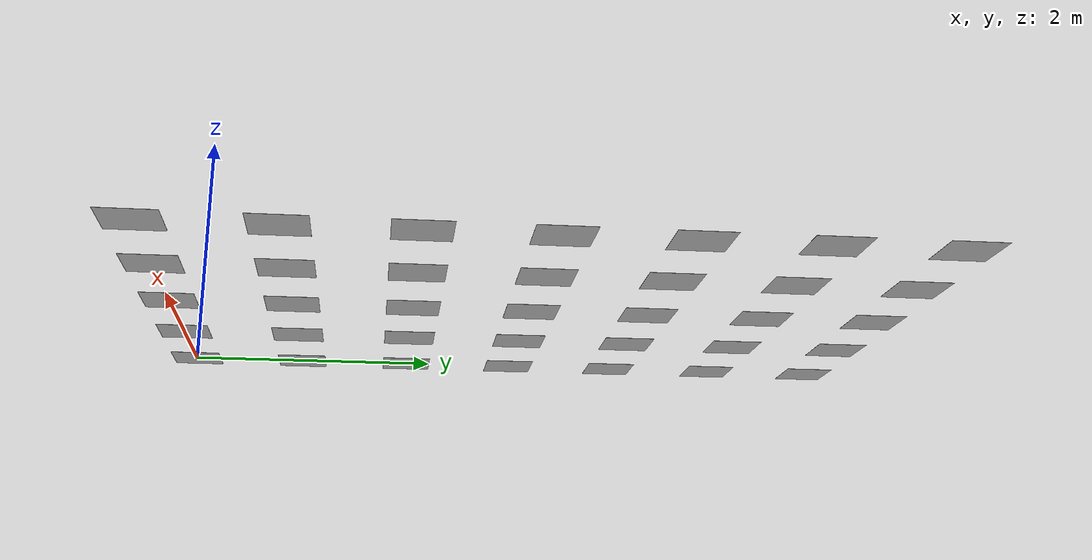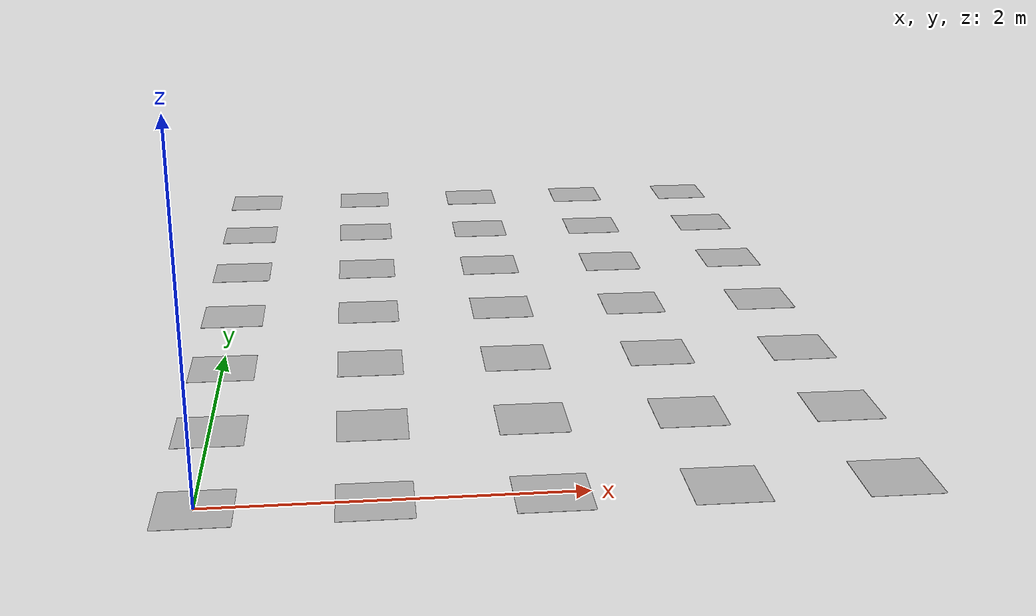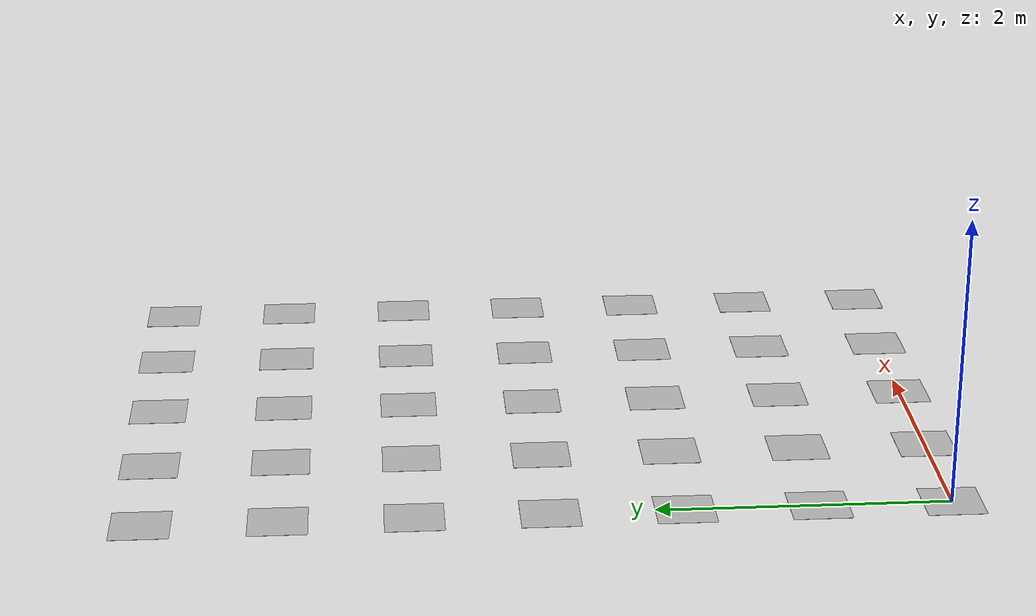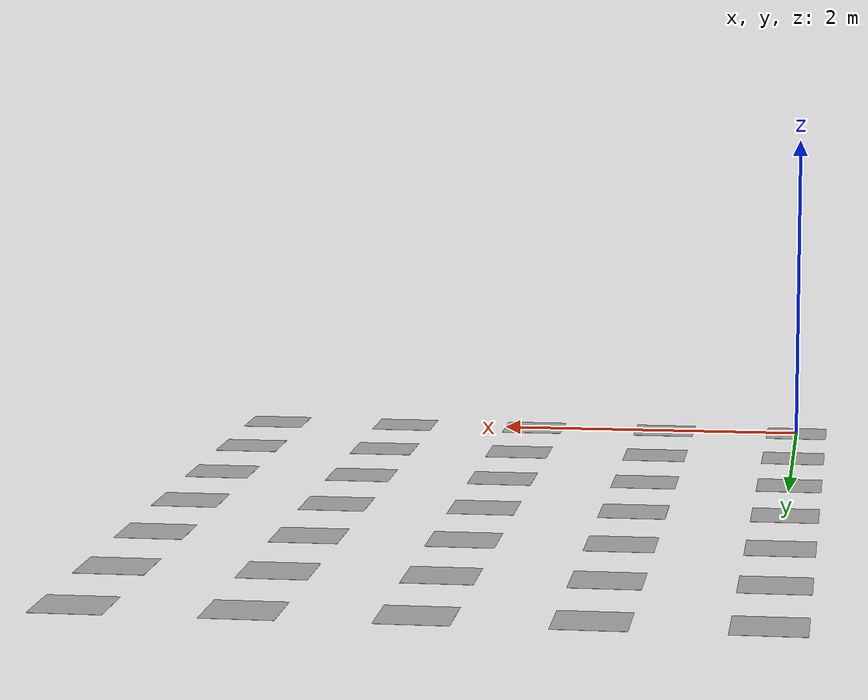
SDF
<?xml version="1.0"?>
<sdf version="1.5">
    <model name="aruco_3_35">
        <static>true</static>
        <link name="aruco_3_35_link">

<visual name="visual_marker_3_0">
    <pose>0.0 0.0 0.0 0 0 1.5707963267948966</pose>
    <cast_shadows>false</cast_shadows>
    <geometry>
        <box>
            <size>0.39999999999999997 0.39999999999999997 1e-3</size>
        </box>
    </geometry>
    <material>
        <script>
            <uri>model://aruco_model_config/materials/scripts</uri>
            <uri>model://aruco_model_config/materials/textures</uri>
            <name>aruco/marker_3_0</name>
        </script>
    </material>
</visual>

<visual name="visual_marker_3_1">
    <pose>0.0 0.9 0.0 0 0 1.5707963267948966</pose>
    <cast_shadows>false</cast_shadows>
    <geometry>
        <box>
            <size>0.39999999999999997 0.39999999999999997 1e-3</size>
        </box>
    </geometry>
    <material>
        <script>
            <uri>model://aruco_model_config/materials/scripts</uri>
            <uri>model://aruco_model_config/materials/textures</uri>
            <name>aruco/marker_3_1</name>
        </script>
    </material>
</visual>

<visual name="visual_marker_3_2">
    <pose>0.0 1.8 0.0 0 0 1.5707963267948966</pose>
    <cast_shadows>false</cast_shadows>
    <geometry>
        <box>
            <size>0.39999999999999997 0.39999999999999997 1e-3</size>
        </box>
    </geometry>
    <material>
        <script>
            <uri>model://aruco_model_config/materials/scripts</uri>
            <uri>model://aruco_model_config/materials/textures</uri>
            <name>aruco/marker_3_2</name>
        </script>
    </material>
</visual>

<visual name="visual_marker_3_3">
    <pose>0.0 2.7 0.0 0 0 1.5707963267948966</pose>
    <cast_shadows>false</cast_shadows>
    <geometry>
        <box>
            <size>0.39999999999999997 0.39999999999999997 1e-3</size>
        </box>
    </geometry>
    <material>
        <script>
            <uri>model://aruco_model_config/materials/scripts</uri>
            <uri>model://aruco_model_config/materials/textures</uri>
            <name>aruco/marker_3_3</name>
        </script>
    </material>
</visual>

<visual name="visual_marker_3_4">
    <pose>0.0 3.6 0.0 0 0 1.5707963267948966</pose>
    <cast_shadows>false</cast_shadows>
    <geometry>
        <box>
            <size>0.39999999999999997 0.39999999999999997 1e-3</size>
        </box>
    </geometry>
    <material>
        <script>
            <uri>model://aruco_model_config/materials/scripts</uri>
            <uri>model://aruco_model_config/materials/textures</uri>
            <name>aruco/marker_3_4</name>
        </script>
    </material>
</visual>

<visual name="visual_marker_3_5">
    <pose>0.0 4.5 0.0 0 0 1.5707963267948966</pose>
    <cast_shadows>false</cast_shadows>
    <geometry>
        <box>
            <size>0.39999999999999997 0.39999999999999997 1e-3</size>
        </box>
    </geometry>
    <material>
        <script>
            <uri>model://aruco_model_config/materials/scripts</uri>
            <uri>model://aruco_model_config/materials/textures</uri>
            <name>aruco/marker_3_5</name>
        </script>
    </material>
</visual>

<visual name="visual_marker_3_6">
    <pose>0.0 5.4 0.0 0 0 1.5707963267948966</pose>
    <cast_shadows>false</cast_shadows>
    <geometry>
        <box>
            <size>0.39999999999999997 0.39999999999999997 1e-3</size>
        </box>
    </geometry>
    <material>
        <script>
            <uri>model://aruco_model_config/materials/scripts</uri>
            <uri>model://aruco_model_config/materials/textures</uri>
            <name>aruco/marker_3_6</name>
        </script>
    </material>
</visual>

<visual name="visual_marker_3_7">
    <pose>0.9 0.0 0.0 0 0 1.5707963267948966</pose>
    <cast_shadows>false</cast_shadows>
    <geometry>
        <box>
            <size>0.39999999999999997 0.39999999999999997 1e-3</size>
        </box>
    </geometry>
    <material>
        <script>
            <uri>model://aruco_model_config/materials/scripts</uri>
            <uri>model://aruco_model_config/materials/textures</uri>
            <name>aruco/marker_3_7</name>
        </script>
    </material>
</visual>

<visual name="visual_marker_3_8">
    <pose>0.9 0.9 0.0 0 0 1.5707963267948966</pose>
    <cast_shadows>false</cast_shadows>
    <geometry>
        <box>
            <size>0.39999999999999997 0.39999999999999997 1e-3</size>
        </box>
    </geometry>
    <material>
        <script>
            <uri>model://aruco_model_config/materials/scripts</uri>
            <uri>model://aruco_model_config/materials/textures</uri>
            <name>aruco/marker_3_8</name>
        </script>
    </material>
</visual>

<visual name="visual_marker_3_9">
    <pose>0.9 1.8 0.0 0 0 1.5707963267948966</pose>
    <cast_shadows>false</cast_shadows>
    <geometry>
        <box>
            <size>0.39999999999999997 0.39999999999999997 1e-3</size>
        </box>
    </geometry>
    <material>
        <script>
            <uri>model://aruco_model_config/materials/scripts</uri>
            <uri>model://aruco_model_config/materials/textures</uri>
            <name>aruco/marker_3_9</name>
        </script>
    </material>
</visual>

<visual name="visual_marker_3_10">
    <pose>0.9 2.7 0.0 0 0 1.5707963267948966</pose>
    <cast_shadows>false</cast_shadows>
    <geometry>
        <box>
            <size>0.39999999999999997 0.39999999999999997 1e-3</size>
        </box>
    </geometry>
    <material>
        <script>
            <uri>model://aruco_model_config/materials/scripts</uri>
            <uri>model://aruco_model_config/materials/textures</uri>
            <name>aruco/marker_3_10</name>
        </script>
    </material>
</visual>

<visual name="visual_marker_3_11">
    <pose>0.9 3.6 0.0 0 0 1.5707963267948966</pose>
    <cast_shadows>false</cast_shadows>
    <geometry>
        <box>
            <size>0.39999999999999997 0.39999999999999997 1e-3</size>
        </box>
    </geometry>
    <material>
        <script>
            <uri>model://aruco_model_config/materials/scripts</uri>
            <uri>model://aruco_model_config/materials/textures</uri>
            <name>aruco/marker_3_11</name>
        </script>
    </material>
</visual>

<visual name="visual_marker_3_12">
    <pose>0.9 4.5 0.0 0 0 1.5707963267948966</pose>
    <cast_shadows>false</cast_shadows>
    <geometry>
        <box>
            <size>0.39999999999999997 0.39999999999999997 1e-3</size>
        </box>
    </geometry>
    <material>
        <script>
            <uri>model://aruco_model_config/materials/scripts</uri>
            <uri>model://aruco_model_config/materials/textures</uri>
            <name>aruco/marker_3_12</name>
        </script>
    </material>
</visual>

<visual name="visual_marker_3_13">
    <pose>0.9 5.4 0.0 0 0 1.5707963267948966</pose>
    <cast_shadows>false</cast_shadows>
    <geometry>
        <box>
            <size>0.39999999999999997 0.39999999999999997 1e-3</size>
        </box>
    </geometry>
    <material>
        <script>
            <uri>model://aruco_model_config/materials/scripts</uri>
            <uri>model://aruco_model_config/materials/textures</uri>
            <name>aruco/marker_3_13</name>
        </script>
    </material>
</visual>

<visual name="visual_marker_3_14">
    <pose>1.8 0.0 0.0 0 0 1.5707963267948966</pose>
    <cast_shadows>false</cast_shadows>
    <geometry>
        <box>
            <size>0.39999999999999997 0.39999999999999997 1e-3</size>
        </box>
    </geometry>
    <material>
        <script>
            <uri>model://aruco_model_config/materials/scripts</uri>
            <uri>model://aruco_model_config/materials/textures</uri>
            <name>aruco/marker_3_14</name>
        </script>
    </material>
</visual>

<visual name="visual_marker_3_15">
    <pose>1.8 0.9 0.0 0 0 1.5707963267948966</pose>
    <cast_shadows>false</cast_shadows>
    <geometry>
        <box>
            <size>0.39999999999999997 0.39999999999999997 1e-3</size>
        </box>
    </geometry>
    <material>
        <script>
            <uri>model://aruco_model_config/materials/scripts</uri>
            <uri>model://aruco_model_config/materials/textures</uri>
            <name>aruco/marker_3_15</name>
        </script>
    </material>
</visual>

<visual name="visual_marker_3_16">
    <pose>1.8 1.8 0.0 0 0 1.5707963267948966</pose>
    <cast_shadows>false</cast_shadows>
    <geometry>
        <box>
            <size>0.39999999999999997 0.39999999999999997 1e-3</size>
        </box>
    </geometry>
    <material>
        <script>
            <uri>model://aruco_model_config/materials/scripts</uri>
            <uri>model://aruco_model_config/materials/textures</uri>
            <name>aruco/marker_3_16</name>
        </script>
    </material>
</visual>

<visual name="visual_marker_3_17">
    <pose>1.8 2.7 0.0 0 0 1.5707963267948966</pose>
    <cast_shadows>false</cast_shadows>
    <geometry>
        <box>
            <size>0.39999999999999997 0.39999999999999997 1e-3</size>
        </box>
    </geometry>
    <material>
        <script>
            <uri>model://aruco_model_config/materials/scripts</uri>
            <uri>model://aruco_model_config/materials/textures</uri>
            <name>aruco/marker_3_17</name>
        </script>
    </material>
</visual>

<visual name="visual_marker_3_18">
    <pose>1.8 3.6 0.0 0 0 1.5707963267948966</pose>
    <cast_shadows>false</cast_shadows>
    <geometry>
        <box>
            <size>0.39999999999999997 0.39999999999999997 1e-3</size>
        </box>
    </geometry>
    <material>
        <script>
            <uri>model://aruco_model_config/materials/scripts</uri>
            <uri>model://aruco_model_config/materials/textures</uri>
            <name>aruco/marker_3_18</name>
        </script>
    </material>
</visual>

<visual name="visual_marker_3_19">
    <pose>1.8 4.5 0.0 0 0 1.5707963267948966</pose>
    <cast_shadows>false</cast_shadows>
    <geometry>
        <box>
            <size>0.39999999999999997 0.39999999999999997 1e-3</size>
        </box>
    </geometry>
    <material>
        <script>
            <uri>model://aruco_model_config/materials/scripts</uri>
            <uri>model://aruco_model_config/materials/textures</uri>
            <name>aruco/marker_3_19</name>
        </script>
    </material>
</visual>

<visual name="visual_marker_3_20">
    <pose>1.8 5.4 0.0 0 0 1.5707963267948966</pose>
    <cast_shadows>false</cast_shadows>
    <geometry>
        <box>
            <size>0.39999999999999997 0.39999999999999997 1e-3</size>
        </box>
    </geometry>
    <material>
        <script>
            <uri>model://aruco_model_config/materials/scripts</uri>
            <uri>model://aruco_model_config/materials/textures</uri>
            <name>aruco/marker_3_20</name>
        </script>
    </material>
</visual>

<visual name="visual_marker_3_21">
    <pose>2.7 0.0 0.0 0 0 1.5707963267948966</pose>
    <cast_shadows>false</cast_shadows>
    <geometry>
        <box>
            <size>0.39999999999999997 0.39999999999999997 1e-3</size>
        </box>
    </geometry>
    <material>
        <script>
            <uri>model://aruco_model_config/materials/scripts</uri>
            <uri>model://aruco_model_config/materials/textures</uri>
            <name>aruco/marker_3_21</name>
        </script>
    </material>
</visual>

<visual name="visual_marker_3_22">
    <pose>2.7 0.9 0.0 0 0 1.5707963267948966</pose>
    <cast_shadows>false</cast_shadows>
    <geometry>
        <box>
            <size>0.39999999999999997 0.39999999999999997 1e-3</size>
        </box>
    </geometry>
    <material>
        <script>
            <uri>model://aruco_model_config/materials/scripts</uri>
            <uri>model://aruco_model_config/materials/textures</uri>
            <name>aruco/marker_3_22</name>
        </script>
    </material>
</visual>

<visual name="visual_marker_3_23">
    <pose>2.7 1.8 0.0 0 0 1.5707963267948966</pose>
    <cast_shadows>false</cast_shadows>
    <geometry>
        <box>
            <size>0.39999999999999997 0.39999999999999997 1e-3</size>
        </box>
    </geometry>
    <material>
        <script>
            <uri>model://aruco_model_config/materials/scripts</uri>
            <uri>model://aruco_model_config/materials/textures</uri>
            <name>aruco/marker_3_23</name>
        </script>
    </material>
</visual>

<visual name="visual_marker_3_24">
    <pose>2.7 2.7 0.0 0 0 1.5707963267948966</pose>
    <cast_shadows>false</cast_shadows>
    <geometry>
        <box>
            <size>0.39999999999999997 0.39999999999999997 1e-3</size>
        </box>
    </geometry>
    <material>
        <script>
            <uri>model://aruco_model_config/materials/scripts</uri>
            <uri>model://aruco_model_config/materials/textures</uri>
            <name>aruco/marker_3_24</name>
        </script>
    </material>
</visual>

<visual name="visual_marker_3_25">
    <pose>2.7 3.6 0.0 0 0 1.5707963267948966</pose>
    <cast_shadows>false</cast_shadows>
    <geometry>
        <box>
            <size>0.39999999999999997 0.39999999999999997 1e-3</size>
        </box>
    </geometry>
    <material>
        <script>
            <uri>model://aruco_model_config/materials/scripts</uri>
            <uri>model://aruco_model_config/materials/textures</uri>
            <name>aruco/marker_3_25</name>
        </script>
    </material>
</visual>

<visual name="visual_marker_3_26">
    <pose>2.7 4.5 0.0 0 0 1.5707963267948966</pose>
    <cast_shadows>false</cast_shadows>
    <geometry>
        <box>
            <size>0.39999999999999997 0.39999999999999997 1e-3</size>
        </box>
    </geometry>
    <material>
        <script>
            <uri>model://aruco_model_config/materials/scripts</uri>
            <uri>model://aruco_model_config/materials/textures</uri>
            <name>aruco/marker_3_26</name>
        </script>
    </material>
</visual>

<visual name="visual_marker_3_27">
    <pose>2.7 5.4 0.0 0 0 1.5707963267948966</pose>
    <cast_shadows>false</cast_shadows>
    <geometry>
        <box>
            <size>0.39999999999999997 0.39999999999999997 1e-3</size>
        </box>
    </geometry>
    <material>
        <script>
            <uri>model://aruco_model_config/materials/scripts</uri>
            <uri>model://aruco_model_config/materials/textures</uri>
            <name>aruco/marker_3_27</name>
        </script>
    </material>
</visual>

<visual name="visual_marker_3_28">
    <pose>3.6 0.0 0.0 0 0 1.5707963267948966</pose>
    <cast_shadows>false</cast_shadows>
    <geometry>
        <box>
            <size>0.39999999999999997 0.39999999999999997 1e-3</size>
        </box>
    </geometry>
    <material>
        <script>
            <uri>model://aruco_model_config/materials/scripts</uri>
            <uri>model://aruco_model_config/materials/textures</uri>
            <name>aruco/marker_3_28</name>
        </script>
    </material>
</visual>

<visual name="visual_marker_3_29">
    <pose>3.6 0.9 0.0 0 0 1.5707963267948966</pose>
    <cast_shadows>false</cast_shadows>
    <geometry>
        <box>
            <size>0.39999999999999997 0.39999999999999997 1e-3</size>
        </box>
    </geometry>
    <material>
        <script>
            <uri>model://aruco_model_config/materials/scripts</uri>
            <uri>model://aruco_model_config/materials/textures</uri>
            <name>aruco/marker_3_29</name>
        </script>
    </material>
</visual>

<visual name="visual_marker_3_30">
    <pose>3.6 1.8 0.0 0 0 1.5707963267948966</pose>
    <cast_shadows>false</cast_shadows>
    <geometry>
        <box>
            <size>0.39999999999999997 0.39999999999999997 1e-3</size>
        </box>
    </geometry>
    <material>
        <script>
            <uri>model://aruco_model_config/materials/scripts</uri>
            <uri>model://aruco_model_config/materials/textures</uri>
            <name>aruco/marker_3_30</name>
        </script>
    </material>
</visual>

<visual name="visual_marker_3_31">
    <pose>3.6 2.7 0.0 0 0 1.5707963267948966</pose>
    <cast_shadows>false</cast_shadows>
    <geometry>
        <box>
            <size>0.39999999999999997 0.39999999999999997 1e-3</size>
        </box>
    </geometry>
    <material>
        <script>
            <uri>model://aruco_model_config/materials/scripts</uri>
            <uri>model://aruco_model_config/materials/textures</uri>
            <name>aruco/marker_3_31</name>
        </script>
    </material>
</visual>

<visual name="visual_marker_3_32">
    <pose>3.6 3.6 0.0 0 0 1.5707963267948966</pose>
    <cast_shadows>false</cast_shadows>
    <geometry>
        <box>
            <size>0.39999999999999997 0.39999999999999997 1e-3</size>
        </box>
    </geometry>
    <material>
        <script>
            <uri>model://aruco_model_config/materials/scripts</uri>
            <uri>model://aruco_model_config/materials/textures</uri>
            <name>aruco/marker_3_32</name>
        </script>
    </material>
</visual>

<visual name="visual_marker_3_33">
    <pose>3.6 4.5 0.0 0 0 1.5707963267948966</pose>
    <cast_shadows>false</cast_shadows>
    <geometry>
        <box>
            <size>0.39999999999999997 0.39999999999999997 1e-3</size>
        </box>
    </geometry>
    <material>
        <script>
            <uri>model://aruco_model_config/materials/scripts</uri>
            <uri>model://aruco_model_config/materials/textures</uri>
            <name>aruco/marker_3_33</name>
        </script>
    </material>
</visual>

<visual name="visual_marker_3_34">
    <pose>3.6 5.4 0.0 0 0 1.5707963267948966</pose>
    <cast_shadows>false</cast_shadows>
    <geometry>
        <box>
            <size>0.39999999999999997 0.39999999999999997 1e-3</size>
        </box>
    </geometry>
    <material>
        <script>
            <uri>model://aruco_model_config/materials/scripts</uri>
            <uri>model://aruco_model_config/materials/textures</uri>
            <name>aruco/marker_3_34</name>
        </script>
    </material>
</visual>

        </link>
    </model>
</sdf>
